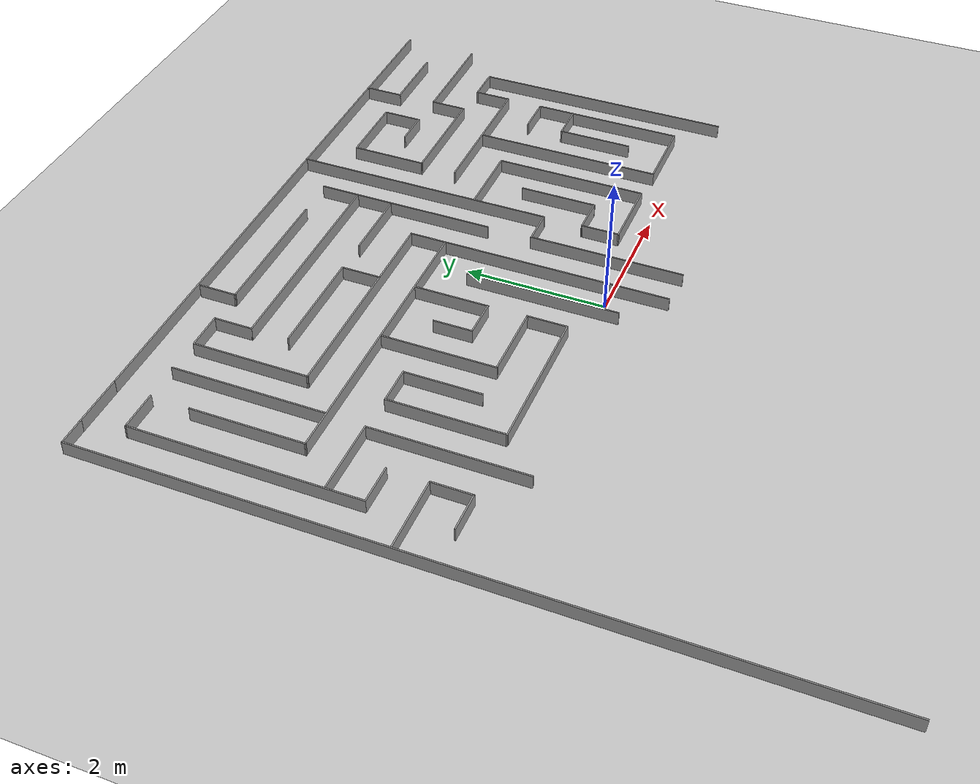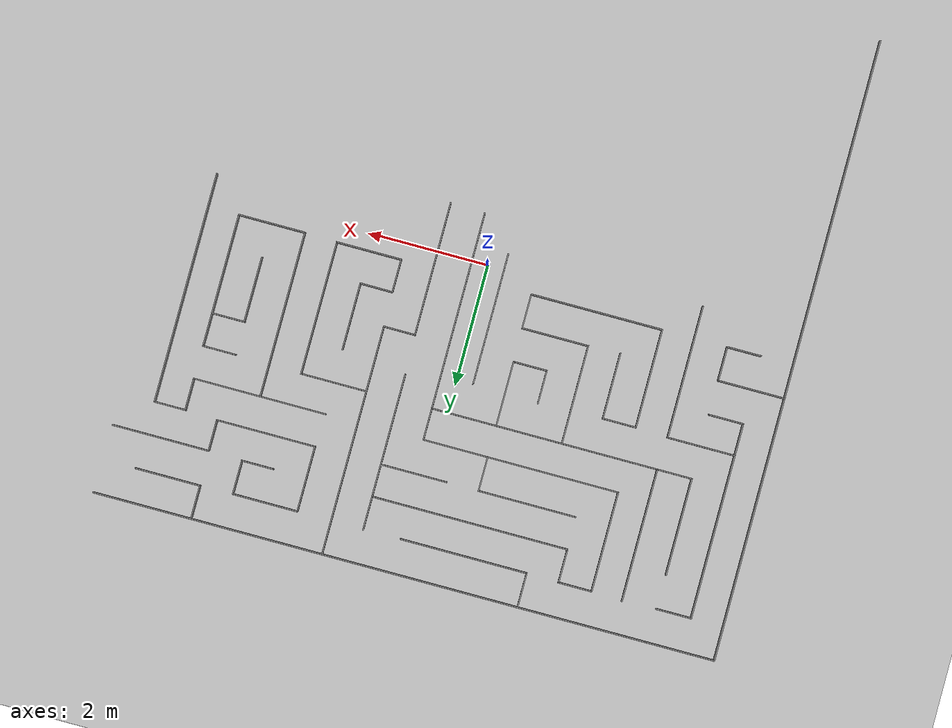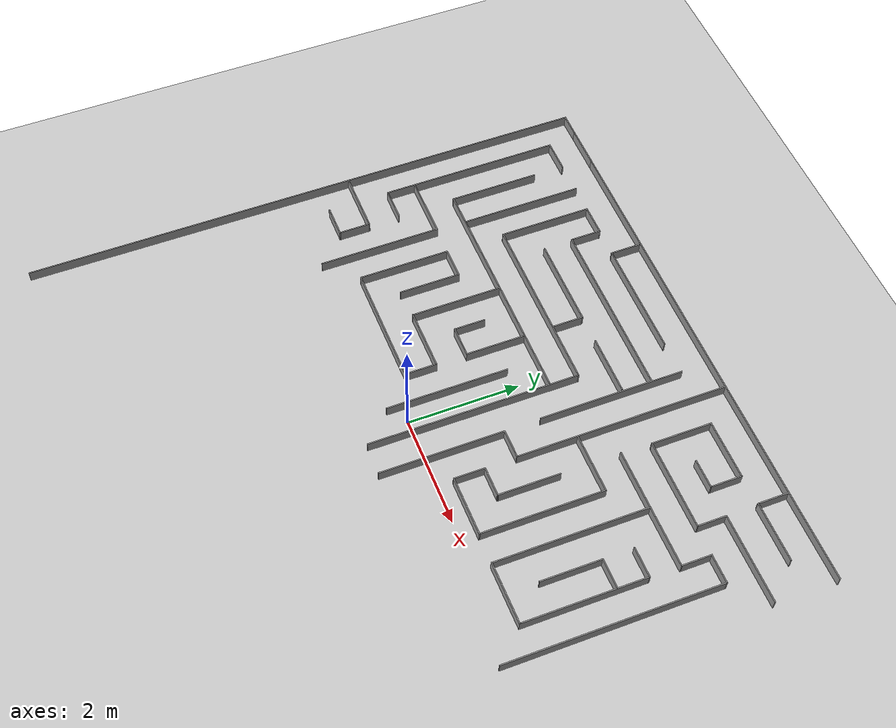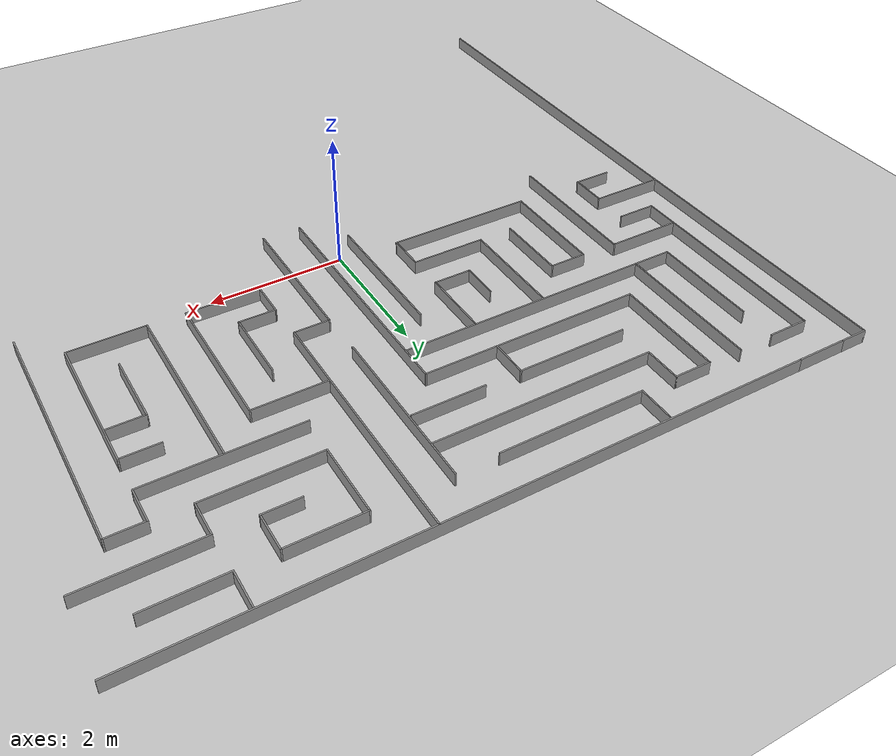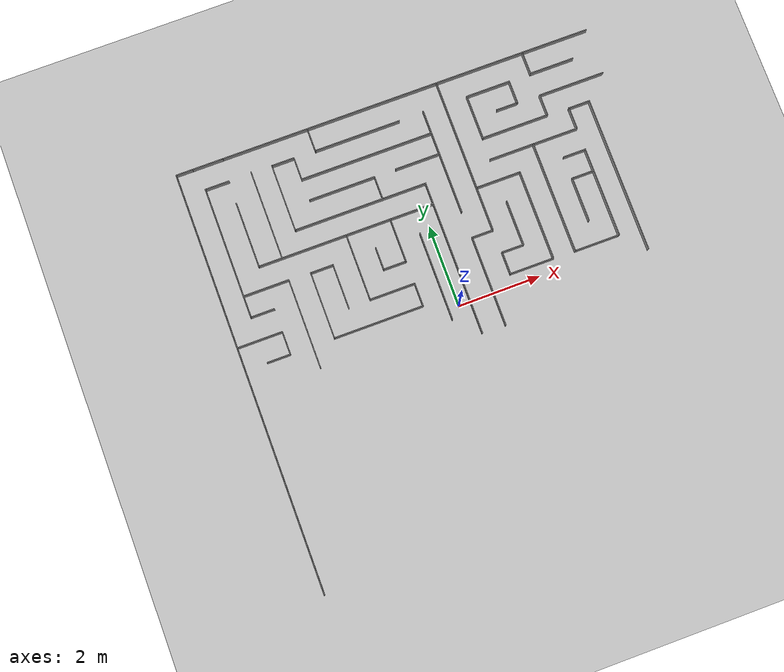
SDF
<sdf version="1.7">
 <world name="default">
  <model name="ground_plane">
   <static>1</static>
   <link name="link">
    <collision name="collision">
     <geometry><plane><normal>0 0 1</normal><size>100 100</size></plane></geometry>
     <surface><friction><ode><mu>100</mu><mu2>50</mu2></ode></friction></surface>
    </collision>
    <visual name="visual">
     <cast_shadows>0</cast_shadows>
     <geometry><plane><normal>0 0 1</normal><size>100 100</size></plane></geometry>
     <material>
      <script><uri>file://media/materials/scripts/gazebo.material</uri><name>Gazebo/Grey</name></script>
     </material>
    </visual>
   </link>
  </model>
  <model name="Maze_V3">
   <pose>-0.002 0.009 0 0 -0 0</pose>
   <link name="Wall_173">
    <collision name="Wall_173_Collision">
     <geometry><box><size>3.795 0.02 0.2</size></box></geometry>
     <pose>0 0 0.1 0 -0 0</pose>
    </collision>
    <visual name="Wall_173_Visual">
     <pose>0 0 0.1 0 -0 0</pose>
     <geometry><box><size>3.795 0.02 0.2</size></box></geometry>
     <material>
      <script><uri>file://media/materials/scripts/gazebo.material</uri><name>Gazebo/Grey</name></script>
      <ambient>1 1 1 1</ambient>
     </material>
     <meta><layer>0</layer></meta>
    </visual>
    <pose>0.266 1.0815 0 0 -0 1.5708</pose>
   </link>
   <link name="Wall_18">
    <collision name="Wall_18_Collision">
     <geometry><box><size>10.341 0.02 0.2</size></box></geometry>
     <pose>0 0 0.1 0 -0 0</pose>
    </collision>
    <visual name="Wall_18_Visual">
     <pose>0 0 0.1 0 -0 0</pose>
     <geometry><box><size>10.341 0.02 0.2</size></box></geometry>
     <material>
      <script><uri>file://media/materials/scripts/gazebo.material</uri><name>Gazebo/Grey</name></script>
      <ambient>1 1 1 1</ambient>
     </material>
     <meta><layer>0</layer></meta>
    </visual>
    <pose>-5.163 0.0095 0 0 -0 1.5708</pose>
   </link>
   <link name="Wall_182">
    <collision name="Wall_182_Collision">
     <geometry><box><size>3.82 0.02 0.2</size></box></geometry>
     <pose>0 0 0.1 0 -0 0</pose>
    </collision>
    <visual name="Wall_182_Visual">
     <pose>0 0 0.1 0 -0 0</pose>
     <geometry><box><size>3.82 0.02 0.2</size></box></geometry>
     <material>
      <script><uri>file://media/materials/scripts/gazebo.material</uri><name>Gazebo/Grey</name></script>
      <ambient>1 1 1 1</ambient>
     </material>
     <meta><layer>0</layer></meta>
    </visual>
    <pose>4.596 1.608 0 0 -0 1.5708</pose>
   </link>
   <link name="Wall_184">
    <collision name="Wall_184_Collision">
     <geometry><box><size>0.532 0.02 0.2</size></box></geometry>
     <pose>0 0 0.1 0 -0 0</pose>
    </collision>
    <visual name="Wall_184_Visual">
     <pose>0 0 0.1 0 -0 0</pose>
     <geometry><box><size>0.532 0.02 0.2</size></box></geometry>
     <material>
      <script><uri>file://media/materials/scripts/gazebo.material</uri><name>Gazebo/Grey</name></script>
      <ambient>1 1 1 1</ambient>
     </material>
     <meta><layer>0</layer></meta>
    </visual>
    <pose>4.34 3.508 0 0 -0 3.14159</pose>
   </link>
   <link name="Wall_186">
    <collision name="Wall_186_Collision">
     <geometry><box><size>0.544 0.02 0.2</size></box></geometry>
     <pose>0 0 0.1 0 -0 0</pose>
    </collision>
    <visual name="Wall_186_Visual">
     <pose>0 0 0.1 0 -0 0</pose>
     <geometry><box><size>0.544 0.02 0.2</size></box></geometry>
     <material>
      <script><uri>file://media/materials/scripts/gazebo.material</uri><name>Gazebo/Grey</name></script>
      <ambient>1 1 1 1</ambient>
     </material>
     <meta><layer>0</layer></meta>
    </visual>
    <pose>4.084 3.246 0 0 -0 -1.5708</pose>
   </link>
   <link name="Wall_188">
    <collision name="Wall_188_Collision">
     <geometry><box><size>2.209 0.02 0.2</size></box></geometry>
     <pose>0 0 0.1 0 -0 0</pose>
    </collision>
    <visual name="Wall_188_Visual">
     <pose>0 0 0.1 0 -0 0</pose>
     <geometry><box><size>2.209 0.02 0.2</size></box></geometry>
     <material>
      <script><uri>file://media/materials/scripts/gazebo.material</uri><name>Gazebo/Grey</name></script>
      <ambient>1 1 1 1</ambient>
     </material>
     <meta><layer>0</layer></meta>
    </visual>
    <pose>2.9895 2.984 0 0 -0 3.14159</pose>
   </link>
   <link name="Wall_190">
    <collision name="Wall_190_Collision">
     <geometry><box><size>2.738 0.02 0.2</size></box></geometry>
     <pose>0 0 0.1 0 -0 0</pose>
    </collision>
    <visual name="Wall_190_Visual">
     <pose>0 0 0.1 0 -0 0</pose>
     <geometry><box><size>2.738 0.02 0.2</size></box></geometry>
     <material>
      <script><uri>file://media/materials/scripts/gazebo.material</uri><name>Gazebo/Grey</name></script>
      <ambient>1 1 1 1</ambient>
     </material>
     <meta><layer>0</layer></meta>
    </visual>
    <pose>2.979 1.61 0 0 -0 -1.5708</pose>
   </link>
   <link name="Wall_192">
    <collision name="Wall_192_Collision">
     <geometry><box><size>1.12 0.02 0.2</size></box></geometry>
     <pose>0 0 0.1 0 -0 0</pose>
    </collision>
    <visual name="Wall_192_Visual">
     <pose>0 0 0.1 0 -0 0</pose>
     <geometry><box><size>1.12 0.02 0.2</size></box></geometry>
     <material>
      <script><uri>file://media/materials/scripts/gazebo.material</uri><name>Gazebo/Grey</name></script>
      <ambient>1 1 1 1</ambient>
     </material>
     <meta><layer>0</layer></meta>
    </visual>
    <pose>3.529 0.251 0 0 -0 0</pose>
   </link>
   <link name="Wall_194">
    <collision name="Wall_194_Collision">
     <geometry><box><size>2.208 0.02 0.2</size></box></geometry>
     <pose>0 0 0.1 0 -0 0</pose>
    </collision>
    <visual name="Wall_194_Visual">
     <pose>0 0 0.1 0 -0 0</pose>
     <geometry><box><size>2.208 0.02 0.2</size></box></geometry>
     <material>
      <script><uri>file://media/materials/scripts/gazebo.material</uri><name>Gazebo/Grey</name></script>
      <ambient>1 1 1 1</ambient>
     </material>
     <meta><layer>0</layer></meta>
    </visual>
    <pose>4.079 1.345 0 0 -0 1.5708</pose>
   </link>
   <link name="Wall_196">
    <collision name="Wall_196_Collision">
     <geometry><box><size>0.557 0.02 0.2</size></box></geometry>
     <pose>0 0 0.1 0 -0 0</pose>
    </collision>
    <visual name="Wall_196_Visual">
     <pose>0 0 0.1 0 -0 0</pose>
     <geometry><box><size>0.557 0.02 0.2</size></box></geometry>
     <material>
      <script><uri>file://media/materials/scripts/gazebo.material</uri><name>Gazebo/Grey</name></script>
      <ambient>1 1 1 1</ambient>
     </material>
     <meta><layer>0</layer></meta>
    </visual>
    <pose>3.8105 2.439 0 0 -0 3.14159</pose>
   </link>
   <link name="Wall_198">
    <collision name="Wall_198_Collision">
     <geometry><box><size>0.546 0.02 0.2</size></box></geometry>
     <pose>0 0 0.1 0 -0 0</pose>
    </collision>
    <visual name="Wall_198_Visual">
     <pose>0 0 0.1 0 -0 0</pose>
     <geometry><box><size>0.546 0.02 0.2</size></box></geometry>
     <material>
      <script><uri>file://media/materials/scripts/gazebo.material</uri><name>Gazebo/Grey</name></script>
      <ambient>1 1 1 1</ambient>
     </material>
     <meta><layer>0</layer></meta>
    </visual>
    <pose>3.805 1.892 0 0 -0 3.14159</pose>
   </link>
   <link name="Wall_20">
    <collision name="Wall_20_Collision">
     <geometry><box><size>0.42 0.02 0.2</size></box></geometry>
     <pose>0 0 0.1 0 -0 0</pose>
    </collision>
    <visual name="Wall_20_Visual">
     <pose>0 0 0.1 0 -0 0</pose>
     <geometry><box><size>0.42 0.02 0.2</size></box></geometry>
     <material>
      <script><uri>file://media/materials/scripts/gazebo.material</uri><name>Gazebo/Grey</name></script>
      <ambient>1 1 1 1</ambient>
     </material>
     <meta><layer>0</layer></meta>
    </visual>
    <pose>-4.963 5.17 0 0 -0 0</pose>
   </link>
   <link name="Wall_201">
    <collision name="Wall_201_Collision">
     <geometry><box><size>1.092 0.02 0.2</size></box></geometry>
     <pose>0 0 0.1 0 -0 0</pose>
    </collision>
    <visual name="Wall_201_Visual">
     <pose>0 0 0.1 0 -0 0</pose>
     <geometry><box><size>1.092 0.02 0.2</size></box></geometry>
     <material>
      <script><uri>file://media/materials/scripts/gazebo.material</uri><name>Gazebo/Grey</name></script>
      <ambient>1 1 1 1</ambient>
     </material>
     <meta><layer>0</layer></meta>
    </visual>
    <pose>3.542 1.356 0 0 -0 -1.5708</pose>
   </link>
   <link name="Wall_203">
    <collision name="Wall_203_Collision">
     <geometry><box><size>2.224 0.02 0.2</size></box></geometry>
     <pose>0 0 0.1 0 -0 0</pose>
    </collision>
    <visual name="Wall_203_Visual">
     <pose>0 0 0.1 0 -0 0</pose>
     <geometry><box><size>2.224 0.02 0.2</size></box></geometry>
     <material>
      <script><uri>file://media/materials/scripts/gazebo.material</uri><name>Gazebo/Grey</name></script>
      <ambient>1 1 1 1</ambient>
     </material>
     <meta><layer>0</layer></meta>
    </visual>
    <pose>0.839 0.276 0 0 -0 1.5708</pose>
   </link>
   <link name="Wall_205">
    <collision name="Wall_205_Collision">
     <geometry><box><size>0.537 0.02 0.2</size></box></geometry>
     <pose>0 0 0.1 0 -0 0</pose>
    </collision>
    <visual name="Wall_205_Visual">
     <pose>0 0 0.1 0 -0 0</pose>
     <geometry><box><size>0.537 0.02 0.2</size></box></geometry>
     <material>
      <script><uri>file://media/materials/scripts/gazebo.material</uri><name>Gazebo/Grey</name></script>
      <ambient>1 1 1 1</ambient>
     </material>
     <meta><layer>0</layer></meta>
    </visual>
    <pose>1.0975 1.378 0 0 -0 0</pose>
   </link>
   <link name="Wall_207">
    <collision name="Wall_207_Collision">
     <geometry><box><size>3.81 0.02 0.2</size></box></geometry>
     <pose>0 0 0.1 0 -0 0</pose>
    </collision>
    <visual name="Wall_207_Visual">
     <pose>0 0 0.1 0 -0 0</pose>
     <geometry><box><size>3.81 0.02 0.2</size></box></geometry>
     <material>
      <script><uri>file://media/materials/scripts/gazebo.material</uri><name>Gazebo/Grey</name></script>
      <ambient>1 1 1 1</ambient>
     </material>
     <meta><layer>0</layer></meta>
    </visual>
    <pose>1.356 3.273 0 0 -0 1.5708</pose>
   </link>
   <link name="Wall_209">
    <collision name="Wall_209_Collision">
     <geometry><box><size>0.552 0.02 0.2</size></box></geometry>
     <pose>0 0 0.1 0 -0 0</pose>
    </collision>
    <visual name="Wall_209_Visual">
     <pose>0 0 0.1 0 -0 0</pose>
     <geometry><box><size>0.552 0.02 0.2</size></box></geometry>
     <material>
      <script><uri>file://media/materials/scripts/gazebo.material</uri><name>Gazebo/Grey</name></script>
      <ambient>1 1 1 1</ambient>
     </material>
     <meta><layer>0</layer></meta>
    </visual>
    <pose>3.535 4.885 0 0 -0 -1.5708</pose>
   </link>
   <link name="Wall_211">
    <collision name="Wall_211_Collision">
     <geometry><box><size>1.092 0.02 0.2</size></box></geometry>
     <pose>0 0 0.1 0 -0 0</pose>
    </collision>
    <visual name="Wall_211_Visual">
     <pose>0 0 0.1 0 -0 0</pose>
     <geometry><box><size>1.092 0.02 0.2</size></box></geometry>
     <material>
      <script><uri>file://media/materials/scripts/gazebo.material</uri><name>Gazebo/Grey</name></script>
      <ambient>1 1 1 1</ambient>
     </material>
     <meta><layer>0</layer></meta>
    </visual>
    <pose>4.071 4.619 0 0 -0 0</pose>
   </link>
   <link name="Wall_213">
    <collision name="Wall_213_Collision">
     <geometry><box><size>1.61996 0.02 0.2</size></box></geometry>
     <pose>0 0 0.1 0 -0 0</pose>
    </collision>
    <visual name="Wall_213_Visual">
     <pose>0 0 0.1 0 -0 0</pose>
     <geometry><box><size>1.61996 0.02 0.2</size></box></geometry>
     <material>
      <script><uri>file://media/materials/scripts/gazebo.material</uri><name>Gazebo/Grey</name></script>
      <ambient>1 1 1 1</ambient>
     </material>
     <meta><layer>0</layer></meta>
    </visual>
    <pose>4.35 4.043 0 0 -0 3.14159</pose>
   </link>
   <link name="Wall_215">
    <collision name="Wall_215_Collision">
     <geometry><box><size>0.531 0.02 0.2</size></box></geometry>
     <pose>0 0 0.1 0 -0 0</pose>
    </collision>
    <visual name="Wall_215_Visual">
     <pose>0 0 0.1 0 -0 0</pose>
     <geometry><box><size>0.531 0.02 0.2</size></box></geometry>
     <material>
      <script><uri>file://media/materials/scripts/gazebo.material</uri><name>Gazebo/Grey</name></script>
      <ambient>1 1 1 1</ambient>
     </material>
     <meta><layer>0</layer></meta>
    </visual>
    <pose>3.55 3.7875 0 0 -0 -1.5708</pose>
   </link>
   <link name="Wall_217">
    <collision name="Wall_217_Collision">
     <geometry><box><size>1.651 0.02 0.2</size></box></geometry>
     <pose>0 0 0.1 0 -0 0</pose>
    </collision>
    <visual name="Wall_217_Visual">
     <pose>0 0 0.1 0 -0 0</pose>
     <geometry><box><size>1.651 0.02 0.2</size></box></geometry>
     <material>
      <script><uri>file://media/materials/scripts/gazebo.material</uri><name>Gazebo/Grey</name></script>
      <ambient>1 1 1 1</ambient>
     </material>
     <meta><layer>0</layer></meta>
    </visual>
    <pose>2.7345 3.532 0 0 -0 3.14159</pose>
   </link>
   <link name="Wall_219">
    <collision name="Wall_219_Collision">
     <geometry><box><size>1.098 0.02 0.2</size></box></geometry>
     <pose>0 0 0.1 0 -0 0</pose>
    </collision>
    <visual name="Wall_219_Visual">
     <pose>0 0 0.1 0 -0 0</pose>
     <geometry><box><size>1.098 0.02 0.2</size></box></geometry>
     <material>
      <script><uri>file://media/materials/scripts/gazebo.material</uri><name>Gazebo/Grey</name></script>
      <ambient>1 1 1 1</ambient>
     </material>
     <meta><layer>0</layer></meta>
    </visual>
    <pose>1.919 4.071 0 0 -0 1.5708</pose>
   </link>
   <link name="Wall_22">
    <collision name="Wall_22_Collision">
     <geometry><box><size>9.19 0.02 0.2</size></box></geometry>
     <pose>0 0 0.1 0 -0 0</pose>
    </collision>
    <visual name="Wall_22_Visual">
     <pose>0 0 0.1 0 -0 0</pose>
     <geometry><box><size>9.19 0.02 0.2</size></box></geometry>
     <material>
      <script><uri>file://media/materials/scripts/gazebo.material</uri><name>Gazebo/Grey</name></script>
      <ambient>1 1 1 1</ambient>
     </material>
     <meta><layer>0</layer></meta>
    </visual>
    <pose>0.578 5.17 0 0 -0 0</pose>
   </link>
   <link name="Wall_221">
    <collision name="Wall_221_Collision">
     <geometry><box><size>1.092 0.02 0.2</size></box></geometry>
     <pose>0 0 0.1 0 -0 0</pose>
    </collision>
    <visual name="Wall_221_Visual">
     <pose>0 0 0.1 0 -0 0</pose>
     <geometry><box><size>1.092 0.02 0.2</size></box></geometry>
     <material>
      <script><uri>file://media/materials/scripts/gazebo.material</uri><name>Gazebo/Grey</name></script>
      <ambient>1 1 1 1</ambient>
     </material>
     <meta><layer>0</layer></meta>
    </visual>
    <pose>2.455 4.61 0 0 -0 0</pose>
   </link>
   <link name="Wall_223">
    <collision name="Wall_223_Collision">
     <geometry><box><size>0.575 0.02 0.2</size></box></geometry>
     <pose>0 0 0.1 0 -0 0</pose>
    </collision>
    <visual name="Wall_223_Visual">
     <pose>0 0 0.1 0 -0 0</pose>
     <geometry><box><size>0.575 0.02 0.2</size></box></geometry>
     <material>
      <script><uri>file://media/materials/scripts/gazebo.material</uri><name>Gazebo/Grey</name></script>
      <ambient>1 1 1 1</ambient>
     </material>
     <meta><layer>0</layer></meta>
    </visual>
    <pose>2.991 4.3325 0 0 -0 -1.5708</pose>
   </link>
   <link name="Wall_225">
    <collision name="Wall_225_Collision">
     <geometry><box><size>0.539 0.02 0.2</size></box></geometry>
     <pose>0 0 0.1 0 -0 0</pose>
    </collision>
    <visual name="Wall_225_Visual">
     <pose>0 0 0.1 0 -0 0</pose>
     <geometry><box><size>0.539 0.02 0.2</size></box></geometry>
     <material>
      <script><uri>file://media/materials/scripts/gazebo.material</uri><name>Gazebo/Grey</name></script>
      <ambient>1 1 1 1</ambient>
     </material>
     <meta><layer>0</layer></meta>
    </visual>
    <pose>2.7315 4.055 0 0 -0 3.14159</pose>
   </link>
   <link name="Wall_227">
    <collision name="Wall_227_Collision">
     <geometry><box><size>1.091 0.02 0.2</size></box></geometry>
     <pose>0 0 0.1 0 -0 0</pose>
    </collision>
    <visual name="Wall_227_Visual">
     <pose>0 0 0.1 0 -0 0</pose>
     <geometry><box><size>1.091 0.02 0.2</size></box></geometry>
     <material>
      <script><uri>file://media/materials/scripts/gazebo.material</uri><name>Gazebo/Grey</name></script>
      <ambient>1 1 1 1</ambient>
     </material>
     <meta><layer>0</layer></meta>
    </visual>
    <pose>1.9055 2.458 0 0 -0 0</pose>
   </link>
   <link name="Wall_229">
    <collision name="Wall_229_Collision">
     <geometry><box><size>2.213 0.02 0.2</size></box></geometry>
     <pose>0 0 0.1 0 -0 0</pose>
    </collision>
    <visual name="Wall_229_Visual">
     <pose>0 0 0.1 0 -0 0</pose>
     <geometry><box><size>2.213 0.02 0.2</size></box></geometry>
     <material>
      <script><uri>file://media/materials/scripts/gazebo.material</uri><name>Gazebo/Grey</name></script>
      <ambient>1 1 1 1</ambient>
     </material>
     <meta><layer>0</layer></meta>
    </visual>
    <pose>2.441 1.3615 0 0 -0 -1.5708</pose>
   </link>
   <link name="Wall_231">
    <collision name="Wall_231_Collision">
     <geometry><box><size>1.091 0.02 0.2</size></box></geometry>
     <pose>0 0 0.1 0 -0 0</pose>
    </collision>
    <visual name="Wall_231_Visual">
     <pose>0 0 0.1 0 -0 0</pose>
     <geometry><box><size>1.091 0.02 0.2</size></box></geometry>
     <material>
      <script><uri>file://media/materials/scripts/gazebo.material</uri><name>Gazebo/Grey</name></script>
      <ambient>1 1 1 1</ambient>
     </material>
     <meta><layer>0</layer></meta>
    </visual>
    <pose>1.9055 0.265 0 0 -0 3.14159</pose>
   </link>
   <link name="Wall_235">
    <collision name="Wall_235_Collision">
     <geometry><box><size>0.564 0.02 0.2</size></box></geometry>
     <pose>0 0 0.1 0 -0 0</pose>
    </collision>
    <visual name="Wall_235_Visual">
     <pose>0 0 0.1 0 -0 0</pose>
     <geometry><box><size>0.564 0.02 0.2</size></box></geometry>
     <material>
      <script><uri>file://media/materials/scripts/gazebo.material</uri><name>Gazebo/Grey</name></script>
      <ambient>1 1 1 1</ambient>
     </material>
     <meta><layer>0</layer></meta>
    </visual>
    <pose>1.37 0.537 0 0 -0 1.5708</pose>
   </link>
   <link name="Wall_237">
    <collision name="Wall_237_Collision">
     <geometry><box><size>0.552 0.02 0.2</size></box></geometry>
     <pose>0 0 0.1 0 -0 0</pose>
    </collision>
    <visual name="Wall_237_Visual">
     <pose>0 0 0.1 0 -0 0</pose>
     <geometry><box><size>0.552 0.02 0.2</size></box></geometry>
     <material>
      <script><uri>file://media/materials/scripts/gazebo.material</uri><name>Gazebo/Grey</name></script>
      <ambient>1 1 1 1</ambient>
     </material>
     <meta><layer>0</layer></meta>
    </visual>
    <pose>1.636 0.8075 0 0 -0 -0.005639</pose>
   </link>
   <link name="Wall_239">
    <collision name="Wall_239_Collision">
     <geometry><box><size>1.12016 0.02 0.2</size></box></geometry>
     <pose>0 0 0.1 0 -0 0</pose>
    </collision>
    <visual name="Wall_239_Visual">
     <pose>0 0 0.1 0 -0 0</pose>
     <geometry><box><size>1.12016 0.02 0.2</size></box></geometry>
     <material>
      <script><uri>file://media/materials/scripts/gazebo.material</uri><name>Gazebo/Grey</name></script>
      <ambient>1 1 1 1</ambient>
     </material>
     <meta><layer>0</layer></meta>
    </visual>
    <pose>1.902 1.356 0 0 -0 1.5708</pose>
   </link>
   <link name="Wall_241">
    <collision name="Wall_241_Collision">
     <geometry><box><size>2.184 0.02 0.2</size></box></geometry>
     <pose>0 0 0.1 0 -0 0</pose>
    </collision>
    <visual name="Wall_241_Visual">
     <pose>0 0 0.1 0 -0 0</pose>
     <geometry><box><size>2.184 0.02 0.2</size></box></geometry>
     <material>
      <script><uri>file://media/materials/scripts/gazebo.material</uri><name>Gazebo/Grey</name></script>
      <ambient>1 1 1 1</ambient>
     </material>
     <meta><layer>0</layer></meta>
    </visual>
    <pose>-0.271 0.811 0 0 -0 1.5708</pose>
   </link>
   <link name="Wall_243">
    <collision name="Wall_243_Collision">
     <geometry><box><size>4.338 0.02 0.2</size></box></geometry>
     <pose>0 0 0.1 0 -0 0</pose>
    </collision>
    <visual name="Wall_243_Visual">
     <pose>0 0 0.1 0 -0 0</pose>
     <geometry><box><size>4.338 0.02 0.2</size></box></geometry>
     <material>
      <script><uri>file://media/materials/scripts/gazebo.material</uri><name>Gazebo/Grey</name></script>
      <ambient>1 1 1 1</ambient>
     </material>
     <meta><layer>0</layer></meta>
    </visual>
    <pose>-1.901 2.448 0 0 -0 3.14159</pose>
   </link>
   <link name="Wall_245">
    <collision name="Wall_245_Collision">
     <geometry><box><size>0.569 0.02 0.2</size></box></geometry>
     <pose>0 0 0.1 0 -0 0</pose>
    </collision>
    <visual name="Wall_245_Visual">
     <pose>0 0 0.1 0 -0 0</pose>
     <geometry><box><size>0.569 0.02 0.2</size></box></geometry>
     <material>
      <script><uri>file://media/materials/scripts/gazebo.material</uri><name>Gazebo/Grey</name></script>
      <ambient>1 1 1 1</ambient>
     </material>
     <meta><layer>0</layer></meta>
    </visual>
    <pose>-1.358 1.6545 0 0 -0 -1.5708</pose>
   </link>
   <link name="Wall_247">
    <collision name="Wall_247_Collision">
     <geometry><box><size>0.573 0.02 0.2</size></box></geometry>
     <pose>0 0 0.1 0 -0 0</pose>
    </collision>
    <visual name="Wall_247_Visual">
     <pose>0 0 0.1 0 -0 0</pose>
     <geometry><box><size>0.573 0.02 0.2</size></box></geometry>
     <material>
      <script><uri>file://media/materials/scripts/gazebo.material</uri><name>Gazebo/Grey</name></script>
      <ambient>1 1 1 1</ambient>
     </material>
     <meta><layer>0</layer></meta>
    </visual>
    <pose>-1.0815 1.38 0 0 -0 0</pose>
   </link>
   <link name="Wall_249">
    <collision name="Wall_249_Collision">
     <geometry><box><size>1.085 0.02 0.2</size></box></geometry>
     <pose>0 0 0.1 0 -0 0</pose>
    </collision>
    <visual name="Wall_249_Visual">
     <pose>0 0 0.1 0 -0 0</pose>
     <geometry><box><size>1.085 0.02 0.2</size></box></geometry>
     <material>
      <script><uri>file://media/materials/scripts/gazebo.material</uri><name>Gazebo/Grey</name></script>
      <ambient>1 1 1 1</ambient>
     </material>
     <meta><layer>0</layer></meta>
    </visual>
    <pose>-0.805 1.9125 0 0 -0 1.5708</pose>
   </link>
   <link name="Wall_251">
    <collision name="Wall_251_Collision">
     <geometry><box><size>1.631 0.02 0.2</size></box></geometry>
     <pose>0 0 0.1 0 -0 0</pose>
    </collision>
    <visual name="Wall_251_Visual">
     <pose>0 0 0.1 0 -0 0</pose>
     <geometry><box><size>1.631 0.02 0.2</size></box></geometry>
     <material>
      <script><uri>file://media/materials/scripts/gazebo.material</uri><name>Gazebo/Grey</name></script>
      <ambient>1 1 1 1</ambient>
     </material>
     <meta><layer>0</layer></meta>
    </visual>
    <pose>-1.898 1.6275 0 0 -0 -1.5708</pose>
   </link>
   <link name="Wall_253">
    <collision name="Wall_253_Collision">
     <geometry><box><size>1.12 0.02 0.2</size></box></geometry>
     <pose>0 0 0.1 0 -0 0</pose>
    </collision>
    <visual name="Wall_253_Visual">
     <pose>0 0 0.1 0 -0 0</pose>
     <geometry><box><size>1.12 0.02 0.2</size></box></geometry>
     <material>
      <script><uri>file://media/materials/scripts/gazebo.material</uri><name>Gazebo/Grey</name></script>
      <ambient>1 1 1 1</ambient>
     </material>
     <meta><layer>0</layer></meta>
    </visual>
    <pose>-1.348 0.822 0 0 -0 0</pose>
   </link>
   <link name="Wall_255">
    <collision name="Wall_255_Collision">
     <geometry><box><size>0.583 0.02 0.2</size></box></geometry>
     <pose>0 0 0.1 0 -0 0</pose>
    </collision>
    <visual name="Wall_255_Visual">
     <pose>0 0 0.1 0 -0 0</pose>
     <geometry><box><size>0.583 0.02 0.2</size></box></geometry>
     <material>
      <script><uri>file://media/materials/scripts/gazebo.material</uri><name>Gazebo/Grey</name></script>
      <ambient>1 1 1 1</ambient>
     </material>
     <meta><layer>0</layer></meta>
    </visual>
    <pose>-0.798 0.5405 0 0 -0 -1.5708</pose>
   </link>
   <link name="Wall_257">
    <collision name="Wall_257_Collision">
     <geometry><box><size>2.201 0.02 0.2</size></box></geometry>
     <pose>0 0 0.1 0 -0 0</pose>
    </collision>
    <visual name="Wall_257_Visual">
     <pose>0 0 0.1 0 -0 0</pose>
     <geometry><box><size>2.201 0.02 0.2</size></box></geometry>
     <material>
      <script><uri>file://media/materials/scripts/gazebo.material</uri><name>Gazebo/Grey</name></script>
      <ambient>1 1 1 1</ambient>
     </material>
     <meta><layer>0</layer></meta>
    </visual>
    <pose>-1.8885 0.259 0 0 -0 3.14159</pose>
   </link>
   <link name="Wall_259">
    <collision name="Wall_259_Collision">
     <geometry><box><size>1.648 0.02 0.2</size></box></geometry>
     <pose>0 0 0.1 0 -0 0</pose>
    </collision>
    <visual name="Wall_259_Visual">
     <pose>0 0 0.1 0 -0 0</pose>
     <geometry><box><size>1.648 0.02 0.2</size></box></geometry>
     <material>
      <script><uri>file://media/materials/scripts/gazebo.material</uri><name>Gazebo/Grey</name></script>
      <ambient>1 1 1 1</ambient>
     </material>
     <meta><layer>0</layer></meta>
    </visual>
    <pose>-2.979 1.073 0 0 -0 1.5708</pose>
   </link>
   <link name="Wall_261">
    <collision name="Wall_261_Collision">
     <geometry><box><size>0.57 0.02 0.2</size></box></geometry>
     <pose>0 0 0.1 0 -0 0</pose>
    </collision>
    <visual name="Wall_261_Visual">
     <pose>0 0 0.1 0 -0 0</pose>
     <geometry><box><size>0.57 0.02 0.2</size></box></geometry>
     <material>
      <script><uri>file://media/materials/scripts/gazebo.material</uri><name>Gazebo/Grey</name></script>
      <ambient>1 1 1 1</ambient>
     </material>
     <meta><layer>0</layer></meta>
    </visual>
    <pose>-2.704 1.887 0 0 -0 0</pose>
   </link>
   <link name="Wall_263">
    <collision name="Wall_263_Collision">
     <geometry><box><size>1.105 0.02 0.2</size></box></geometry>
     <pose>0 0 0.1 0 -0 0</pose>
    </collision>
    <visual name="Wall_263_Visual">
     <pose>0 0 0.1 0 -0 0</pose>
     <geometry><box><size>1.105 0.02 0.2</size></box></geometry>
     <material>
      <script><uri>file://media/materials/scripts/gazebo.material</uri><name>Gazebo/Grey</name></script>
      <ambient>1 1 1 1</ambient>
     </material>
     <meta><layer>0</layer></meta>
    </visual>
    <pose>-2.429 1.3445 0 0 -0 -1.5708</pose>
   </link>
   <link name="Wall_265">
    <collision name="Wall_265_Collision">
     <geometry><box><size>1.62 0.02 0.2</size></box></geometry>
     <pose>0 0 0.1 0 -0 0</pose>
    </collision>
    <visual name="Wall_265_Visual">
     <pose>0 0 0.1 0 -0 0</pose>
     <geometry><box><size>1.62 0.02 0.2</size></box></geometry>
     <material>
      <script><uri>file://media/materials/scripts/gazebo.material</uri><name>Gazebo/Grey</name></script>
      <ambient>1 1 1 1</ambient>
     </material>
     <meta><layer>0</layer></meta>
    </visual>
    <pose>-4.06 3.248 0 0 -0 1.5708</pose>
   </link>
   <link name="Wall_267">
    <collision name="Wall_267_Collision">
     <geometry><box><size>2.192 0.02 0.2</size></box></geometry>
     <pose>0 0 0.1 0 -0 0</pose>
    </collision>
    <visual name="Wall_267_Visual">
     <pose>0 0 0.1 0 -0 0</pose>
     <geometry><box><size>2.192 0.02 0.2</size></box></geometry>
     <material>
      <script><uri>file://media/materials/scripts/gazebo.material</uri><name>Gazebo/Grey</name></script>
      <ambient>1 1 1 1</ambient>
     </material>
     <meta><layer>0</layer></meta>
    </visual>
    <pose>-3.487 3.546 0 0 -0 -1.5708</pose>
   </link>
   <link name="Wall_269">
    <collision name="Wall_269_Collision">
     <geometry><box><size>3.262 0.02 0.2</size></box></geometry>
     <pose>0 0 0.1 0 -0 0</pose>
    </collision>
    <visual name="Wall_269_Visual">
     <pose>0 0 0.1 0 -0 0</pose>
     <geometry><box><size>3.262 0.02 0.2</size></box></geometry>
     <material>
      <script><uri>file://media/materials/scripts/gazebo.material</uri><name>Gazebo/Grey</name></script>
      <ambient>1 1 1 1</ambient>
     </material>
     <meta><layer>0</layer></meta>
    </visual>
    <pose>-1.355 2.969 0 0 -0 3.14159</pose>
   </link>
   <link name="Wall_271">
    <collision name="Wall_271_Collision">
     <geometry><box><size>2.605 0.02 0.2</size></box></geometry>
     <pose>0 0 0.1 0 -0 0</pose>
    </collision>
    <visual name="Wall_271_Visual">
     <pose>0 0 0.1 0 -0 0</pose>
     <geometry><box><size>2.605 0.02 0.2</size></box></geometry>
     <material>
      <script><uri>file://media/materials/scripts/gazebo.material</uri><name>Gazebo/Grey</name></script>
      <ambient>1 1 1 1</ambient>
     </material>
     <meta><layer>0</layer></meta>
    </visual>
    <pose>0.822 3.3265 0 0 -0 1.5708</pose>
   </link>
   <link name="Wall_273">
    <collision name="Wall_273_Collision">
     <geometry><box><size>1.071 0.02 0.2</size></box></geometry>
     <pose>0 0 0.1 0 -0 0</pose>
    </collision>
    <visual name="Wall_273_Visual">
     <pose>0 0 0.1 0 -0 0</pose>
     <geometry><box><size>1.071 0.02 0.2</size></box></geometry>
     <material>
      <script><uri>file://media/materials/scripts/gazebo.material</uri><name>Gazebo/Grey</name></script>
      <ambient>1 1 1 1</ambient>
     </material>
     <meta><layer>0</layer></meta>
    </visual>
    <pose>0.2565 3.53 0 0 -0 3.14159</pose>
   </link>
   <link name="Wall_275">
    <collision name="Wall_275_Collision">
     <geometry><box><size>0.576 0.02 0.2</size></box></geometry>
     <pose>0 0 0.1 0 -0 0</pose>
    </collision>
    <visual name="Wall_275_Visual">
     <pose>0 0 0.1 0 -0 0</pose>
     <geometry><box><size>0.576 0.02 0.2</size></box></geometry>
     <material>
      <script><uri>file://media/materials/scripts/gazebo.material</uri><name>Gazebo/Grey</name></script>
      <ambient>1 1 1 1</ambient>
     </material>
     <meta><layer>0</layer></meta>
    </visual>
    <pose>-0.804 3.252 0 0 -0 1.5708</pose>
   </link>
   <link name="Wall_277">
    <collision name="Wall_277_Collision">
     <geometry><box><size>1.629 0.02 0.2</size></box></geometry>
     <pose>0 0 0.1 0 -0 0</pose>
    </collision>
    <visual name="Wall_277_Visual">
     <pose>0 0 0.1 0 -0 0</pose>
     <geometry><box><size>1.629 0.02 0.2</size></box></geometry>
     <material>
      <script><uri>file://media/materials/scripts/gazebo.material</uri><name>Gazebo/Grey</name></script>
      <ambient>1 1 1 1</ambient>
     </material>
     <meta><layer>0</layer></meta>
    </visual>
    <pose>-1.6085 3.53 0 0 -0 3.14159</pose>
   </link>
   <link name="Wall_279">
    <collision name="Wall_279_Collision">
     <geometry><box><size>1.664 0.02 0.2</size></box></geometry>
     <pose>0 0 0.1 0 -0 0</pose>
    </collision>
    <visual name="Wall_279_Visual">
     <pose>0 0 0.1 0 -0 0</pose>
     <geometry><box><size>1.664 0.02 0.2</size></box></geometry>
     <material>
      <script><uri>file://media/materials/scripts/gazebo.material</uri><name>Gazebo/Grey</name></script>
      <ambient>1 1 1 1</ambient>
     </material>
     <meta><layer>0</layer></meta>
    </visual>
    <pose>-2.976 3.791 0 0 -0 1.5708</pose>
   </link>
   <link name="Wall_281">
    <collision name="Wall_281_Collision">
     <geometry><box><size>0.569 0.02 0.2</size></box></geometry>
     <pose>0 0 0.1 0 -0 0</pose>
    </collision>
    <visual name="Wall_281_Visual">
     <pose>0 0 0.1 0 -0 0</pose>
     <geometry><box><size>0.569 0.02 0.2</size></box></geometry>
     <material>
      <script><uri>file://media/materials/scripts/gazebo.material</uri><name>Gazebo/Grey</name></script>
      <ambient>1 1 1 1</ambient>
     </material>
     <meta><layer>0</layer></meta>
    </visual>
    <pose>-2.7015 4.613 0 0 -0 0</pose>
   </link>
   <link name="Wall_283">
    <collision name="Wall_283_Collision">
     <geometry><box><size>0.568 0.02 0.2</size></box></geometry>
     <pose>0 0 0.1 0 -0 0</pose>
    </collision>
    <visual name="Wall_283_Visual">
     <pose>0 0 0.1 0 -0 0</pose>
     <geometry><box><size>0.568 0.02 0.2</size></box></geometry>
     <material>
      <script><uri>file://media/materials/scripts/gazebo.material</uri><name>Gazebo/Grey</name></script>
      <ambient>1 1 1 1</ambient>
     </material>
     <meta><layer>0</layer></meta>
    </visual>
    <pose>-2.427 4.339 0 0 -0 -1.5708</pose>
   </link>
   <link name="Wall_285">
    <collision name="Wall_285_Collision">
     <geometry><box><size>3.256 0.02 0.2</size></box></geometry>
     <pose>0 0 0.1 0 -0 0</pose>
    </collision>
    <visual name="Wall_285_Visual">
     <pose>0 0 0.1 0 -0 0</pose>
     <geometry><box><size>3.256 0.02 0.2</size></box></geometry>
     <material>
      <script><uri>file://media/materials/scripts/gazebo.material</uri><name>Gazebo/Grey</name></script>
      <ambient>1 1 1 1</ambient>
     </material>
     <meta><layer>0</layer></meta>
    </visual>
    <pose>-0.809 4.065 0 0 -0 0</pose>
   </link>
   <link name="Wall_289">
    <collision name="Wall_289_Collision">
     <geometry><box><size>0.776 0.02 0.2</size></box></geometry>
     <pose>0 0 0.1 0 -0 0</pose>
    </collision>
    <visual name="Wall_289_Visual">
     <pose>0 0 0.1 0 -0 0</pose>
     <geometry><box><size>0.776 0.02 0.2</size></box></geometry>
     <material>
      <script><uri>file://media/materials/scripts/gazebo.material</uri><name>Gazebo/Grey</name></script>
      <ambient>1 1 1 1</ambient>
     </material>
     <meta><layer>0</layer></meta>
    </visual>
    <pose>-4.385 5.17 0 0 -0 3.14159</pose>
   </link>
   <link name="Wall_33">
    <collision name="Wall_33_Collision">
     <geometry><box><size>0.55 0.02 0.2</size></box></geometry>
     <pose>0 0 0.1 0 -0 0</pose>
    </collision>
    <visual name="Wall_33_Visual">
     <pose>0 0 0.1 0 -0 0</pose>
     <geometry><box><size>0.55 0.02 0.2</size></box></geometry>
     <material>
      <script><uri>file://media/materials/scripts/gazebo.material</uri><name>Gazebo/Grey</name></script>
      <ambient>1 1 1 1</ambient>
     </material>
     <meta><layer>0</layer></meta>
    </visual>
    <pose>-1.895 4.868 0 0 -0 1.5708</pose>
   </link>
   <link name="Wall_35">
    <collision name="Wall_35_Collision">
     <geometry><box><size>2.12 0.02 0.2</size></box></geometry>
     <pose>0 0 0.1 0 -0 0</pose>
    </collision>
    <visual name="Wall_35_Visual">
     <pose>0 0 0.1 0 -0 0</pose>
     <geometry><box><size>2.12 0.02 0.2</size></box></geometry>
     <material>
      <script><uri>file://media/materials/scripts/gazebo.material</uri><name>Gazebo/Grey</name></script>
      <ambient>1 1 1 1</ambient>
     </material>
     <meta><layer>0</layer></meta>
    </visual>
    <pose>-0.845 4.603 0 0 -0 0</pose>
   </link>
   <link name="Wall_37">
    <collision name="Wall_37_Collision">
     <geometry><box><size>0.6 0.02 0.2</size></box></geometry>
     <pose>0 0 0.1 0 -0 0</pose>
    </collision>
    <visual name="Wall_37_Visual">
     <pose>0 0 0.1 0 -0 0</pose>
     <geometry><box><size>0.6 0.02 0.2</size></box></geometry>
     <material>
      <script><uri>file://media/materials/scripts/gazebo.material</uri><name>Gazebo/Grey</name></script>
      <ambient>1 1 1 1</ambient>
     </material>
     <meta><layer>0</layer></meta>
    </visual>
    <pose>-4.339 4.612 0 0 -0 3.14159</pose>
   </link>
   <link name="Wall_39">
    <collision name="Wall_39_Collision">
     <geometry><box><size>3.25 0.02 0.2</size></box></geometry>
     <pose>0 0 0.1 0 -0 0</pose>
    </collision>
    <visual name="Wall_39_Visual">
     <pose>0 0 0.1 0 -0 0</pose>
     <geometry><box><size>3.25 0.02 0.2</size></box></geometry>
     <material>
      <script><uri>file://media/materials/scripts/gazebo.material</uri><name>Gazebo/Grey</name></script>
      <ambient>1 1 1 1</ambient>
     </material>
     <meta><layer>0</layer></meta>
    </visual>
    <pose>-4.629 2.997 0 0 -0 -1.5708</pose>
   </link>
   <link name="Wall_41">
    <collision name="Wall_41_Collision">
     <geometry><box><size>0.59 0.02 0.2</size></box></geometry>
     <pose>0 0 0.1 0 -0 0</pose>
    </collision>
    <visual name="Wall_41_Visual">
     <pose>0 0 0.1 0 -0 0</pose>
     <geometry><box><size>0.59 0.02 0.2</size></box></geometry>
     <material>
      <script><uri>file://media/materials/scripts/gazebo.material</uri><name>Gazebo/Grey</name></script>
      <ambient>1 1 1 1</ambient>
     </material>
     <meta><layer>0</layer></meta>
    </visual>
    <pose>-4.344 1.382 0 0 -0 0</pose>
   </link>
   <link name="Wall_43">
    <collision name="Wall_43_Collision">
     <geometry><box><size>1.13 0.02 0.2</size></box></geometry>
     <pose>0 0 0.1 0 -0 0</pose>
    </collision>
    <visual name="Wall_43_Visual">
     <pose>0 0 0.1 0 -0 0</pose>
     <geometry><box><size>1.13 0.02 0.2</size></box></geometry>
     <material>
      <script><uri>file://media/materials/scripts/gazebo.material</uri><name>Gazebo/Grey</name></script>
      <ambient>1 1 1 1</ambient>
     </material>
     <meta><layer>0</layer></meta>
    </visual>
    <pose>-4.069 1.909 0 0 -0 0</pose>
   </link>
   <link name="Wall_45">
    <collision name="Wall_45_Collision">
     <geometry><box><size>2.2 0.02 0.2</size></box></geometry>
     <pose>0 0 0.1 0 -0 0</pose>
    </collision>
    <visual name="Wall_45_Visual">
     <pose>0 0 0.1 0 -0 0</pose>
     <geometry><box><size>2.2 0.02 0.2</size></box></geometry>
     <material>
      <script><uri>file://media/materials/scripts/gazebo.material</uri><name>Gazebo/Grey</name></script>
      <ambient>1 1 1 1</ambient>
     </material>
     <meta><layer>0</layer></meta>
    </visual>
    <pose>-3.514 0.819 0 0 -0 -1.5708</pose>
   </link>
   <link name="Wall_53">
    <collision name="Wall_53_Collision">
     <geometry><box><size>1.12013 0.02 0.2</size></box></geometry>
     <pose>0 0 0.1 0 -0 0</pose>
    </collision>
    <visual name="Wall_53_Visual">
     <pose>0 0 0.1 0 -0 0</pose>
     <geometry><box><size>1.12013 0.02 0.2</size></box></geometry>
     <material>
      <script><uri>file://media/materials/scripts/gazebo.material</uri><name>Gazebo/Grey</name></script>
      <ambient>1 1 1 1</ambient>
     </material>
     <meta><layer>0</layer></meta>
    </visual>
    <pose>-4.611 0.814 0 0 -0 0</pose>
   </link>
   <link name="Wall_55">
    <collision name="Wall_55_Collision">
     <geometry><box><size>0.58 0.02 0.2</size></box></geometry>
     <pose>0 0 0.1 0 -0 0</pose>
    </collision>
    <visual name="Wall_55_Visual">
     <pose>0 0 0.1 0 -0 0</pose>
     <geometry><box><size>0.58 0.02 0.2</size></box></geometry>
     <material>
      <script><uri>file://media/materials/scripts/gazebo.material</uri><name>Gazebo/Grey</name></script>
      <ambient>1 1 1 1</ambient>
     </material>
     <meta><layer>0</layer></meta>
    </visual>
    <pose>-4.061 0.534 0 0 -0 -1.5708</pose>
   </link>
   <link name="Wall_57">
    <collision name="Wall_57_Collision">
     <geometry><box><size>0.58 0.02 0.2</size></box></geometry>
     <pose>0 0 0.1 0 -0 0</pose>
    </collision>
    <visual name="Wall_57_Visual">
     <pose>0 0 0.1 0 -0 0</pose>
     <geometry><box><size>0.58 0.02 0.2</size></box></geometry>
     <material>
      <script><uri>file://media/materials/scripts/gazebo.material</uri><name>Gazebo/Grey</name></script>
      <ambient>1 1 1 1</ambient>
     </material>
     <meta><layer>0</layer></meta>
    </visual>
    <pose>-4.341 0.254 0 0 -0 3.14159</pose>
   </link>
   <static>1</static>
  </model>
 </world>
</sdf>
